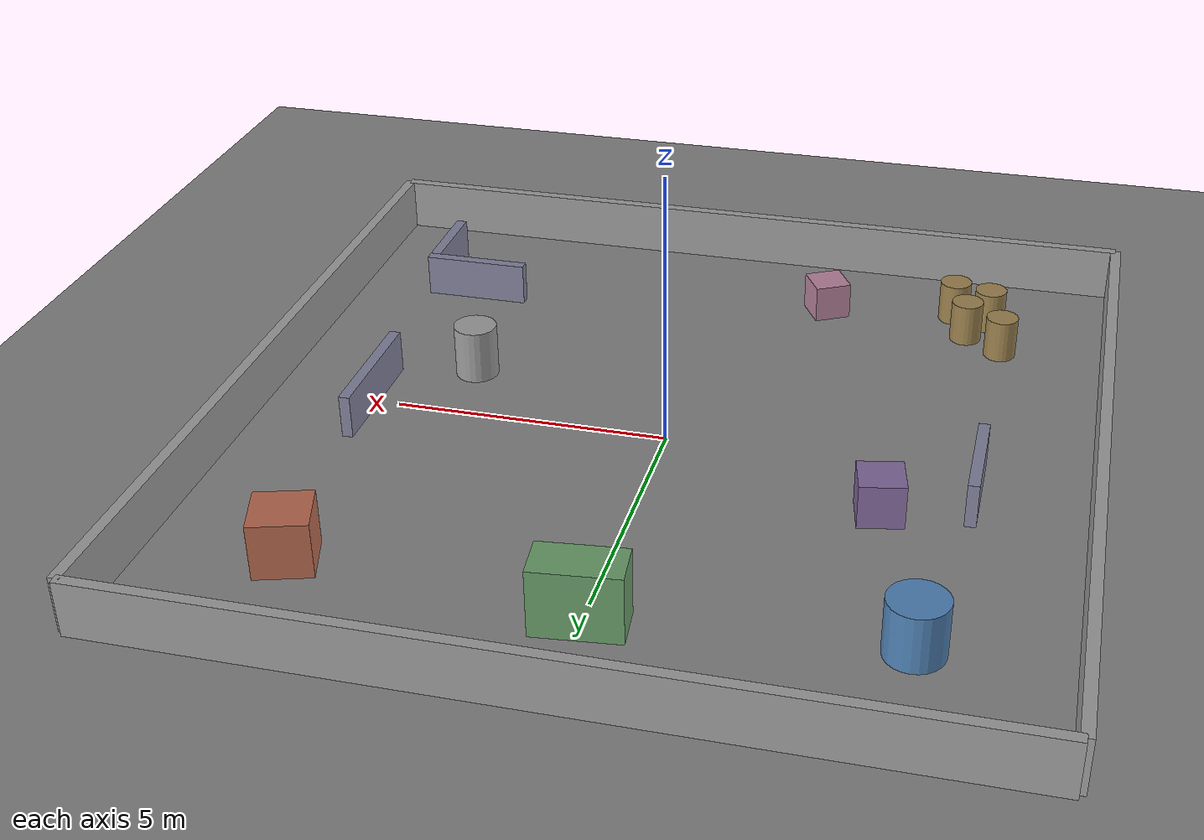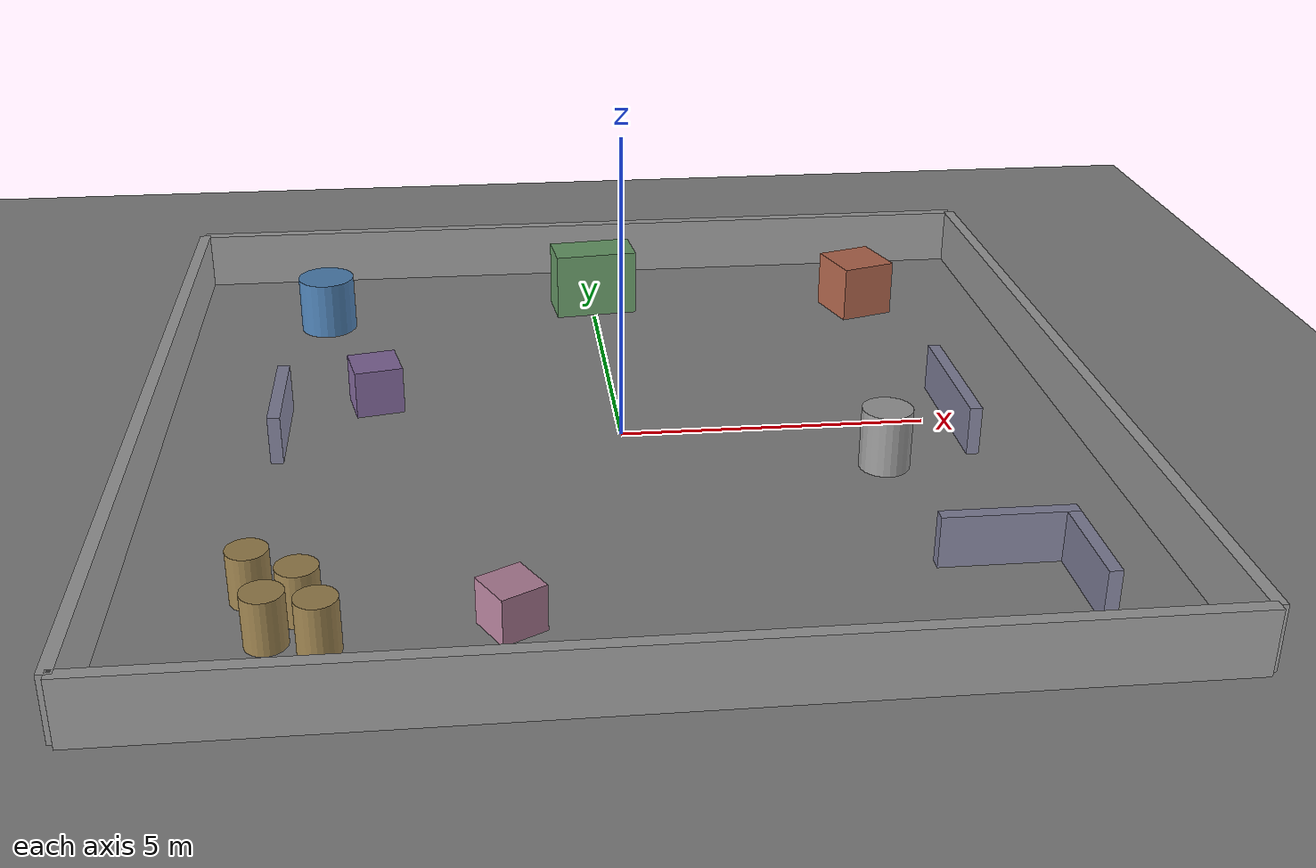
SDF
<?xml version="1.0"?>
<sdf version="1.9">
  <world name="coven_world">

    <!-- Physics -->
    <physics name="1ms" type="ignored">
      <max_step_size>0.001</max_step_size>
      <real_time_factor>1.0</real_time_factor>
    </physics>

    <!-- Plugins -->
    <plugin filename="gz-sim-physics-system" name="gz::sim::systems::Physics"/>
    <plugin filename="gz-sim-user-commands-system" name="gz::sim::systems::UserCommands"/>
    <plugin filename="gz-sim-scene-broadcaster-system" name="gz::sim::systems::SceneBroadcaster"/>
    <plugin filename="gz-sim-sensors-system" name="gz::sim::systems::Sensors">
      <render_engine>ogre2</render_engine>
    </plugin>
    <plugin filename="gz-sim-imu-system" name="gz::sim::systems::Imu"/>
    <plugin filename="gz-sim-contact-system" name="gz::sim::systems::Contact"/>

    <!-- Lighting -->
    <light type="directional" name="sun">
      <cast_shadows>true</cast_shadows>
      <pose>0 0 50 0 0 0</pose>
      <diffuse>0.8 0.8 0.8 1</diffuse>
      <specular>0.2 0.2 0.2 1</specular>
      <direction>-0.5 0.1 -0.9</direction>
    </light>

    <!-- Ground Plane (15m x 15m) -->
    <model name="ground_plane">
      <static>true</static>
      <link name="link">
        <collision name="collision">
          <geometry>
            <plane>
              <normal>0 0 1</normal>
              <size>15 15</size>
            </plane>
          </geometry>
        </collision>
        <visual name="visual">
          <geometry>
            <plane>
              <normal>0 0 1</normal>
              <size>15 15</size>
            </plane>
          </geometry>
          <material>
            <ambient>0.4 0.4 0.4 1</ambient>
            <diffuse>0.5 0.5 0.5 1</diffuse>
          </material>
        </visual>
      </link>
    </model>

    <!-- PERIMETER WALLS (15m x 15m arena) -->

    <model name="wall_north">
      <static>true</static>
      <pose>0 7.5 0.5 0 0 0</pose>
      <link name="link">
        <collision name="collision">
          <geometry><box><size>15 0.2 1</size></box></geometry>
        </collision>
        <visual name="visual">
          <geometry><box><size>15 0.2 1</size></box></geometry>
          <material>
            <ambient>0.5 0.5 0.5 1</ambient>
            <diffuse>0.6 0.6 0.6 1</diffuse>
          </material>
        </visual>
      </link>
    </model>

    <model name="wall_south">
      <static>true</static>
      <pose>0 -7.5 0.5 0 0 0</pose>
      <link name="link">
        <collision name="collision">
          <geometry><box><size>15 0.2 1</size></box></geometry>
        </collision>
        <visual name="visual">
          <geometry><box><size>15 0.2 1</size></box></geometry>
          <material>
            <ambient>0.5 0.5 0.5 1</ambient>
            <diffuse>0.6 0.6 0.6 1</diffuse>
          </material>
        </visual>
      </link>
    </model>

    <model name="wall_east">
      <static>true</static>
      <pose>7.5 0 0.5 0 0 0</pose>
      <link name="link">
        <collision name="collision">
          <geometry><box><size>0.2 15 1</size></box></geometry>
        </collision>
        <visual name="visual">
          <geometry><box><size>0.2 15 1</size></box></geometry>
          <material>
            <ambient>0.5 0.5 0.5 1</ambient>
            <diffuse>0.6 0.6 0.6 1</diffuse>
          </material>
        </visual>
      </link>
    </model>

    <model name="wall_west">
      <static>true</static>
      <pose>-7.5 0 0.5 0 0 0</pose>
      <link name="link">
        <collision name="collision">
          <geometry><box><size>0.2 15 1</size></box></geometry>
        </collision>
        <visual name="visual">
          <geometry><box><size>0.2 15 1</size></box></geometry>
          <material>
            <ambient>0.5 0.5 0.5 1</ambient>
            <diffuse>0.6 0.6 0.6 1</diffuse>
          </material>
        </visual>
      </link>
    </model>

    <!-- STATIC OBSTACLES -->
    <!-- - Nothing within 3m of origin -->
    <!-- - Nothing within 1m of walls (walls at ±7.5, so obstacles max ±6.5) -->
    <!-- - At least 1m between obstacles -->

    <!-- Large box in NE quadrant -->
    <model name="box_ne">
      <static>true</static>
      <pose>5.0 5.0 0.5 0 0 0.3</pose>
      <link name="link">
        <collision name="collision">
          <geometry><box><size>1.0 1.0 1.0</size></box></geometry>
        </collision>
        <visual name="visual">
          <geometry><box><size>1.0 1.0 1.0</size></box></geometry>
          <material>
            <ambient>0.6 0.3 0.2 1</ambient>
            <diffuse>0.7 0.4 0.3 1</diffuse>
          </material>
        </visual>
      </link>
    </model>

    <!-- Cylinder in NW quadrant -->
    <model name="cylinder_nw">
      <static>true</static>
      <pose>-5.0 5.0 0.5 0 0 0</pose>
      <link name="link">
        <collision name="collision">
          <geometry><cylinder><radius>0.5</radius><length>1.0</length></cylinder></geometry>
        </collision>
        <visual name="visual">
          <geometry><cylinder><radius>0.5</radius><length>1.0</length></cylinder></geometry>
          <material>
            <ambient>0.2 0.4 0.6 1</ambient>
            <diffuse>0.3 0.5 0.7 1</diffuse>
          </material>
        </visual>
      </link>
    </model>

    <!-- L-shaped wall in SE quadrant -->
    <model name="l_wall_se_horiz">
      <static>true</static>
      <pose>5.0 -4.5 0.4 0 0 0</pose>
      <link name="link">
        <collision name="collision">
          <geometry><box><size>2.0 0.2 0.8</size></box></geometry>
        </collision>
        <visual name="visual">
          <geometry><box><size>2.0 0.2 0.8</size></box></geometry>
          <material>
            <ambient>0.4 0.4 0.5 1</ambient>
            <diffuse>0.5 0.5 0.6 1</diffuse>
          </material>
        </visual>
      </link>
    </model>
    <model name="l_wall_se_vert">
      <static>true</static>
      <pose>5.9 -5.4 0.4 0 0 0</pose>
      <link name="link">
        <collision name="collision">
          <geometry><box><size>0.2 1.6 0.8</size></box></geometry>
        </collision>
        <visual name="visual">
          <geometry><box><size>0.2 1.6 0.8</size></box></geometry>
          <material>
            <ambient>0.4 0.4 0.5 1</ambient>
            <diffuse>0.5 0.5 0.6 1</diffuse>
          </material>
        </visual>
      </link>
    </model>

    <!-- Barrel cluster in SW quadrant -->
    <model name="barrel_1">
      <static>true</static>
      <pose>-5.5 -4.5 0.4 0 0 0</pose>
      <link name="link">
        <collision name="collision">
          <geometry><cylinder><radius>0.3</radius><length>0.8</length></cylinder></geometry>
        </collision>
        <visual name="visual">
          <geometry><cylinder><radius>0.3</radius><length>0.8</length></cylinder></geometry>
          <material>
            <ambient>0.5 0.4 0.2 1</ambient>
            <diffuse>0.6 0.5 0.3 1</diffuse>
          </material>
        </visual>
      </link>
    </model>
    <model name="barrel_2">
      <static>true</static>
      <pose>-4.8 -5.0 0.4 0 0 0</pose>
      <link name="link">
        <collision name="collision">
          <geometry><cylinder><radius>0.3</radius><length>0.8</length></cylinder></geometry>
        </collision>
        <visual name="visual">
          <geometry><cylinder><radius>0.3</radius><length>0.8</length></cylinder></geometry>
          <material>
            <ambient>0.5 0.4 0.2 1</ambient>
            <diffuse>0.6 0.5 0.3 1</diffuse>
          </material>
        </visual>
      </link>
    </model>
    <model name="barrel_3">
      <static>true</static>
      <pose>-5.2 -5.6 0.4 0 0 0</pose>
      <link name="link">
        <collision name="collision">
          <geometry><cylinder><radius>0.3</radius><length>0.8</length></cylinder></geometry>
        </collision>
        <visual name="visual">
          <geometry><cylinder><radius>0.3</radius><length>0.8</length></cylinder></geometry>
          <material>
            <ambient>0.5 0.4 0.2 1</ambient>
            <diffuse>0.6 0.5 0.3 1</diffuse>
          </material>
        </visual>
      </link>
    </model>
    <model name="barrel_4">
      <static>true</static>
      <pose>-4.5 -5.8 0.4 0 0 0</pose>
      <link name="link">
        <collision name="collision">
          <geometry><cylinder><radius>0.3</radius><length>0.8</length></cylinder></geometry>
        </collision>
        <visual name="visual">
          <geometry><cylinder><radius>0.3</radius><length>0.8</length></cylinder></geometry>
          <material>
            <ambient>0.5 0.4 0.2 1</ambient>
            <diffuse>0.6 0.5 0.3 1</diffuse>
          </material>
        </visual>
      </link>
    </model>

    <!-- Interior wall segment - east side -->
    <model name="wall_interior_east">
      <static>true</static>
      <pose>5.5 0 0.4 0 0 0</pose>
      <link name="link">
        <collision name="collision">
          <geometry><box><size>0.2 2.5 0.8</size></box></geometry>
        </collision>
        <visual name="visual">
          <geometry><box><size>0.2 2.5 0.8</size></box></geometry>
          <material>
            <ambient>0.4 0.4 0.5 1</ambient>
            <diffuse>0.5 0.5 0.6 1</diffuse>
          </material>
        </visual>
      </link>
    </model>

    <!-- Interior wall segment - west side -->
    <model name="wall_interior_west">
      <static>true</static>
      <pose>-5.5 0.5 0.4 0 0 0</pose>
      <link name="link">
        <collision name="collision">
          <geometry><box><size>0.2 2.0 0.8</size></box></geometry>
        </collision>
        <visual name="visual">
          <geometry><box><size>0.2 2.0 0.8</size></box></geometry>
          <material>
            <ambient>0.4 0.4 0.5 1</ambient>
            <diffuse>0.5 0.5 0.6 1</diffuse>
          </material>
        </visual>
      </link>
    </model>

    <!-- Large crate along north side -->
    <model name="crate_north">
      <static>true</static>
      <pose>0 5.5 0.6 0 0 0.1</pose>
      <link name="link">
        <collision name="collision">
          <geometry><box><size>1.5 0.8 1.2</size></box></geometry>
        </collision>
        <visual name="visual">
          <geometry><box><size>1.5 0.8 1.2</size></box></geometry>
          <material>
            <ambient>0.3 0.5 0.3 1</ambient>
            <diffuse>0.4 0.6 0.4 1</diffuse>
          </material>
        </visual>
      </link>
    </model>

    <!-- Small box along south side -->
    <model name="box_south">
      <static>true</static>
      <pose>-2.0 -5.5 0.35 0 0 0.5</pose>
      <link name="link">
        <collision name="collision">
          <geometry><box><size>0.7 0.7 0.7</size></box></geometry>
        </collision>
        <visual name="visual">
          <geometry><box><size>0.7 0.7 0.7</size></box></geometry>
          <material>
            <ambient>0.6 0.4 0.5 1</ambient>
            <diffuse>0.7 0.5 0.6 1</diffuse>
          </material>
        </visual>
      </link>
    </model>

    <!-- Large cylinder east of center -->
    <model name="pillar_east">
      <static>true</static>
      <pose>4.0 -1.5 0.5 0 0 0</pose>
      <link name="link">
        <collision name="collision">
          <geometry><cylinder><radius>0.4</radius><length>1.0</length></cylinder></geometry>
        </collision>
        <visual name="visual">
          <geometry><cylinder><radius>0.4</radius><length>1.0</length></cylinder></geometry>
          <material>
            <ambient>0.5 0.5 0.5 1</ambient>
            <diffuse>0.6 0.6 0.6 1</diffuse>
          </material>
        </visual>
      </link>
    </model>

    <!-- Box west of center -->
    <model name="box_west">
      <static>true</static>
      <pose>-4.0 1.5 0.4 0 0 0.2</pose>
      <link name="link">
        <collision name="collision">
          <geometry><box><size>0.8 0.8 0.8</size></box></geometry>
        </collision>
        <visual name="visual">
          <geometry><box><size>0.8 0.8 0.8</size></box></geometry>
          <material>
            <ambient>0.4 0.3 0.5 1</ambient>
            <diffuse>0.5 0.4 0.6 1</diffuse>
          </material>
        </visual>
      </link>
    </model>

    <!-- DOCK AND ROVERS spawned dynamically by launch file -->

  </world>
</sdf>
